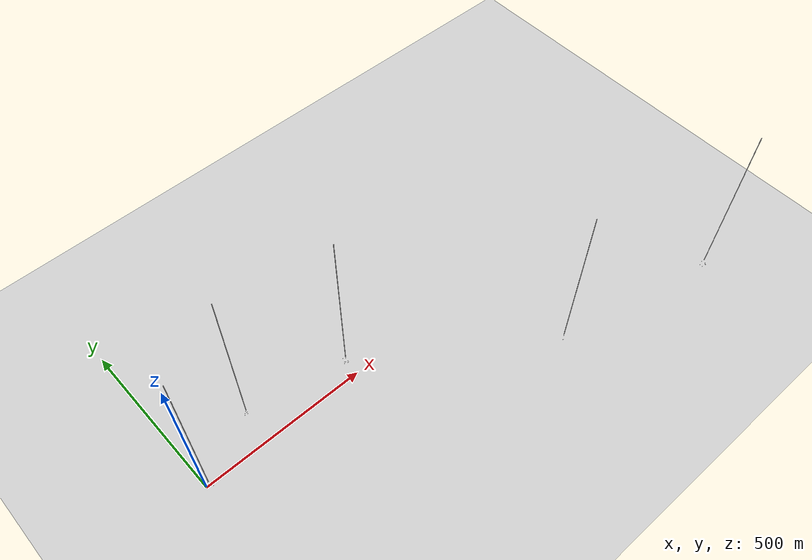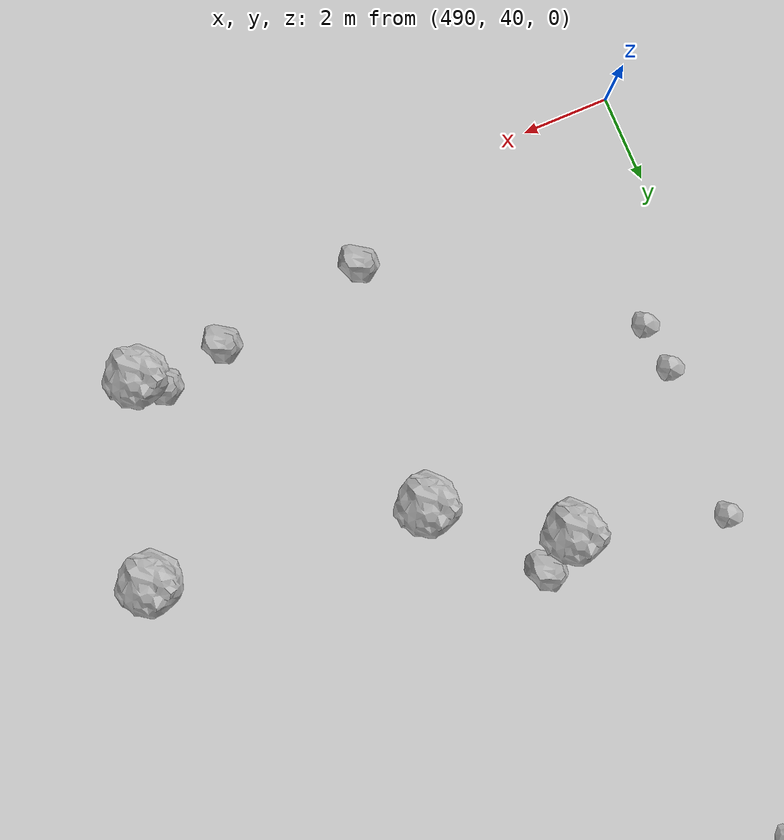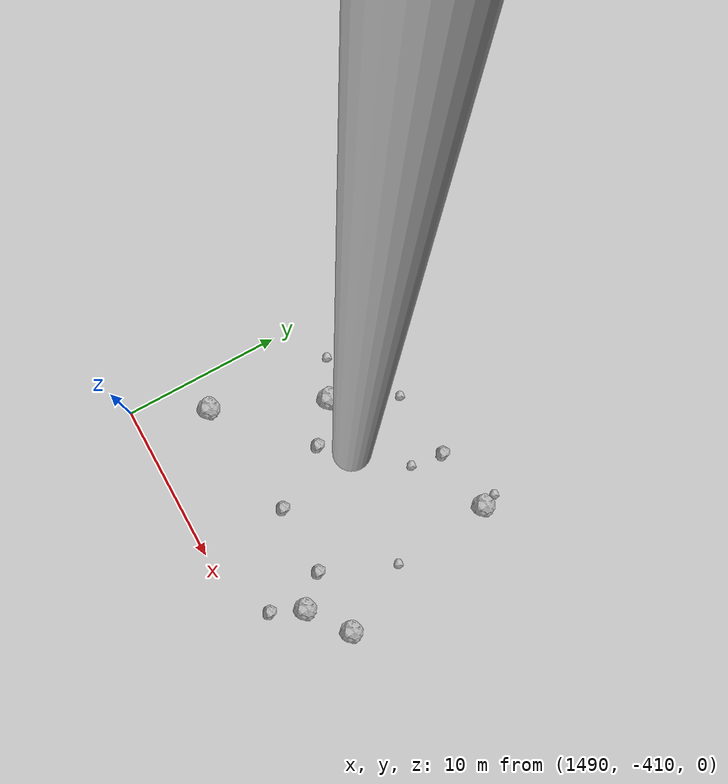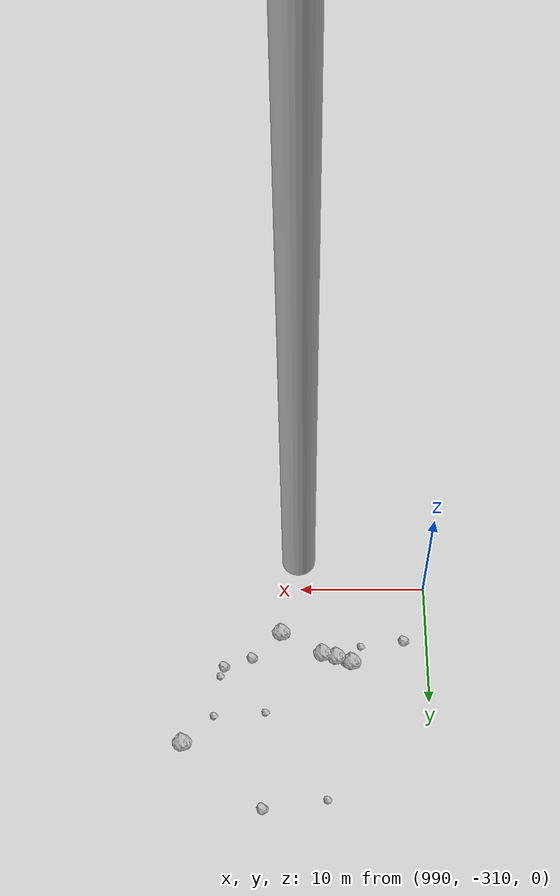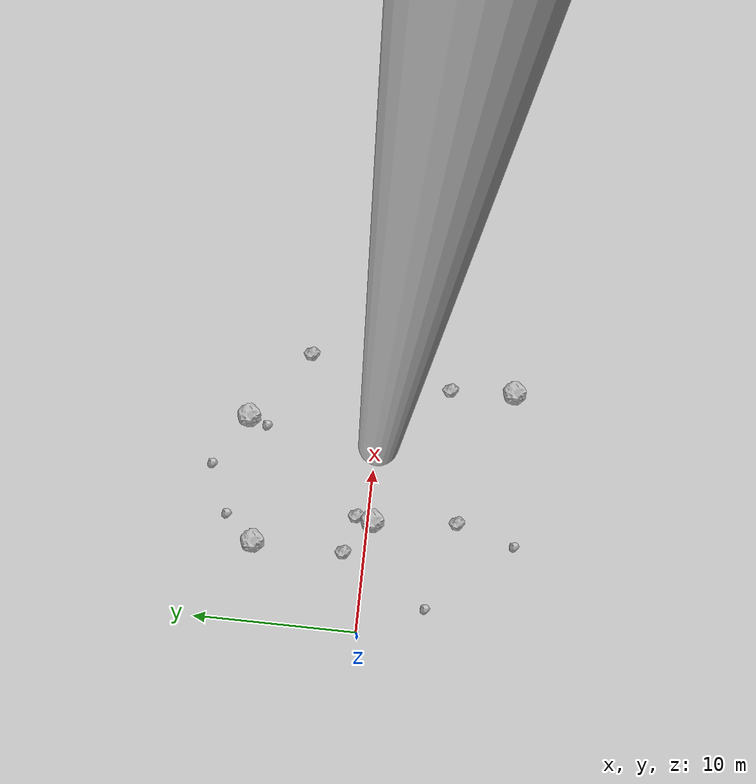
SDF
<?xml version="1.0" ?>
<sdf version="1.6">
  <world name="default">

    <include>
      <uri>model://custom_ground</uri>
    </include>

    <include>
      <uri>model://sun</uri>
    </include>

    <spherical_coordinates>
      <surface_model>EARTH_WGS84</surface_model>
      <latitude_deg>38.161479</latitude_deg>
      <longitude_deg>-122.454630</longitude_deg>
      <elevation>488.0</elevation>
      <heading_deg>90</heading_deg>
    </spherical_coordinates>

    <model name="rock1_0_0">
      <include>
        <uri>model://rock1</uri>
        <pose>18.424238970202666 -2.193589667638478 0.5 0 0 0</pose>
      </include>
    </model>
    <model name="rock1_0_1">
      <include>
        <uri>model://rock1</uri>
        <pose>4.974839960579147 6.896070360764334 0.5 0 0 0</pose>
      </include>
    </model>
    <model name="rock1_0_2">
      <include>
        <uri>model://rock1</uri>
        <pose>6.933372031182117 -0.2585628984870265 0.5 0 0 0</pose>
      </include>
    </model>
    <model name="rock1_0_3">
      <include>
        <uri>model://rock1</uri>
        <pose>12.590703531061413 7.916593475721047 0.5 0 0 0</pose>
      </include>
    </model>
    <model name="rock1_0_4">
      <include>
        <uri>model://rock1</uri>
        <pose>15.633813921390837 -8.133147448270599 0.5 0 0 0</pose>
      </include>
    </model>
    <model name="rock2_0_0">
      <include>
        <uri>model://rock2</uri>
        <pose>7.302043467193204 -5.417621919374724 0.3 0 0 0</pose>
      </include>
    </model>
    <model name="rock2_0_1">
      <include>
        <uri>model://rock2</uri>
        <pose>7.124871421450958 0.7713093218701932 0.3 0 0 0</pose>
      </include>
    </model>
    <model name="rock2_0_2">
      <include>
        <uri>model://rock2</uri>
        <pose>15.40382705011588 -4.218873540471639 0.3 0 0 0</pose>
      </include>
    </model>
    <model name="rock2_0_3">
      <include>
        <uri>model://rock2</uri>
        <pose>4.844790833376549 1.3354663416748345 0.3 0 0 0</pose>
      </include>
    </model>
    <model name="rock2_0_4">
      <include>
        <uri>model://rock2</uri>
        <pose>16.77923852822771 4.503906875412779 0.3 0 0 0</pose>
      </include>
    </model>
    <model name="rock3_0_0">
      <include>
        <uri>model://rock3</uri>
        <pose>9.411856310672013 9.859677483915064 0.2 0 0 0</pose>
      </include>
    </model>
    <model name="rock3_0_1">
      <include>
        <uri>model://rock3</uri>
        <pose>6.2040131958232525 -9.047718305613223 0.2 0 0 0</pose>
      </include>
    </model>
    <model name="rock3_0_2">
      <include>
        <uri>model://rock3</uri>
        <pose>1.8715971179045732 -4.009189626749466 0.2 0 0 0</pose>
      </include>
    </model>
    <model name="rock3_0_3">
      <include>
        <uri>model://rock3</uri>
        <pose>12.07818299167823 6.7613368735819 0.2 0 0 0</pose>
      </include>
    </model>
    <model name="rock3_0_4">
      <include>
        <uri>model://rock3</uri>
        <pose>6.4345517791237095 8.655709966366953 0.2 0 0 0</pose>
      </include>
    </model>
    <model name="rock1_1_0">
      <include>
        <uri>model://rock1</uri>
        <pose>200.864688490462 108.00550110081397 0.5 0 0 0</pose>
      </include>
    </model>
    <model name="rock1_1_1">
      <include>
        <uri>model://rock1</uri>
        <pose>201.1641912485593 103.52859906157909 0.5 0 0 0</pose>
      </include>
    </model>
    <model name="rock1_1_2">
      <include>
        <uri>model://rock1</uri>
        <pose>201.8054959783852 97.80053432442702 0.5 0 0 0</pose>
      </include>
    </model>
    <model name="rock1_1_3">
      <include>
        <uri>model://rock1</uri>
        <pose>195.46863158768582 103.78120256569021 0.5 0 0 0</pose>
      </include>
    </model>
    <model name="rock1_1_4">
      <include>
        <uri>model://rock1</uri>
        <pose>202.64801819124264 102.66184592289999 0.5 0 0 0</pose>
      </include>
    </model>
    <model name="rock2_1_0">
      <include>
        <uri>model://rock2</uri>
        <pose>209.6282283900366 98.2207661205808 0.3 0 0 0</pose>
      </include>
    </model>
    <model name="rock2_1_1">
      <include>
        <uri>model://rock2</uri>
        <pose>198.26111161039745 103.1917617541968 0.3 0 0 0</pose>
      </include>
    </model>
    <model name="rock2_1_2">
      <include>
        <uri>model://rock2</uri>
        <pose>201.9314020808825 97.5384221138861 0.3 0 0 0</pose>
      </include>
    </model>
    <model name="rock2_1_3">
      <include>
        <uri>model://rock2</uri>
        <pose>203.375203198593 102.977056682876 0.3 0 0 0</pose>
      </include>
    </model>
    <model name="rock2_1_4">
      <include>
        <uri>model://rock2</uri>
        <pose>206.68229324020302 105.83234525407852 0.3 0 0 0</pose>
      </include>
    </model>
    <model name="rock3_1_0">
      <include>
        <uri>model://rock3</uri>
        <pose>197.9491376156651 91.61797610693301 0.2 0 0 0</pose>
      </include>
    </model>
    <model name="rock3_1_1">
      <include>
        <uri>model://rock3</uri>
        <pose>199.36603159900744 91.61280776458166 0.2 0 0 0</pose>
      </include>
    </model>
    <model name="rock3_1_2">
      <include>
        <uri>model://rock3</uri>
        <pose>202.2298653880464 96.37177048187752 0.2 0 0 0</pose>
      </include>
    </model>
    <model name="rock3_1_3">
      <include>
        <uri>model://rock3</uri>
        <pose>192.86868583881179 99.50582944390605 0.2 0 0 0</pose>
      </include>
    </model>
    <model name="rock3_1_4">
      <include>
        <uri>model://rock3</uri>
        <pose>193.96928561184265 96.68729268578973 0.2 0 0 0</pose>
      </include>
    </model>
    <model name="rock1_2_0">
      <include>
        <uri>model://rock1</uri>
        <pose>502.1855505394183 41.86998050979271 0.5 0 0 0</pose>
      </include>
    </model>
    <model name="rock1_2_1">
      <include>
        <uri>model://rock1</uri>
        <pose>498.2115071375627 59.728244396792704 0.5 0 0 0</pose>
      </include>
    </model>
    <model name="rock1_2_2">
      <include>
        <uri>model://rock1</uri>
        <pose>497.4031261858876 46.914371738181025 0.5 0 0 0</pose>
      </include>
    </model>
    <model name="rock1_2_3">
      <include>
        <uri>model://rock1</uri>
        <pose>503.59170952139823 46.16081747591946 0.5 0 0 0</pose>
      </include>
    </model>
    <model name="rock1_2_4">
      <include>
        <uri>model://rock1</uri>
        <pose>494.72051496940173 48.69080302439917 0.5 0 0 0</pose>
      </include>
    </model>
    <model name="rock2_2_0">
      <include>
        <uri>model://rock2</uri>
        <pose>501.7205821632022 42.22925102240856 0.3 0 0 0</pose>
      </include>
    </model>
    <model name="rock2_2_1">
      <include>
        <uri>model://rock2</uri>
        <pose>503.12521769882864 55.90115682811662 0.3 0 0 0</pose>
      </include>
    </model>
    <model name="rock2_2_2">
      <include>
        <uri>model://rock2</uri>
        <pose>496.6879493029015 41.377733536611714 0.3 0 0 0</pose>
      </include>
    </model>
    <model name="rock2_2_3">
      <include>
        <uri>model://rock2</uri>
        <pose>495.5379210433286 49.23640757631124 0.3 0 0 0</pose>
      </include>
    </model>
    <model name="rock2_2_4">
      <include>
        <uri>model://rock2</uri>
        <pose>500.1786753713092 41.877309425847095 0.3 0 0 0</pose>
      </include>
    </model>
    <model name="rock3_2_0">
      <include>
        <uri>model://rock3</uri>
        <pose>493.0262053234171 56.46387053823287 0.2 0 0 0</pose>
      </include>
    </model>
    <model name="rock3_2_1">
      <include>
        <uri>model://rock3</uri>
        <pose>491.3147194689008 45.08468820204884 0.2 0 0 0</pose>
      </include>
    </model>
    <model name="rock3_2_2">
      <include>
        <uri>model://rock3</uri>
        <pose>504.7007121884954 57.01685674526958 0.2 0 0 0</pose>
      </include>
    </model>
    <model name="rock3_2_3">
      <include>
        <uri>model://rock3</uri>
        <pose>491.3562987697353 49.65203905218411 0.2 0 0 0</pose>
      </include>
    </model>
    <model name="rock3_2_4">
      <include>
        <uri>model://rock3</uri>
        <pose>491.1989493963652 46.18239314049157 0.2 0 0 0</pose>
      </include>
    </model>
    <model name="rock1_3_0">
      <include>
        <uri>model://rock1</uri>
        <pose>995.9362739907343 -303.1749621446856 0.5 0 0 0</pose>
      </include>
    </model>
    <model name="rock1_3_1">
      <include>
        <uri>model://rock1</uri>
        <pose>998.2289917167545 -303.9053473206934 0.5 0 0 0</pose>
      </include>
    </model>
    <model name="rock1_3_2">
      <include>
        <uri>model://rock1</uri>
        <pose>997.1418256825336 -303.6218286688531 0.5 0 0 0</pose>
      </include>
    </model>
    <model name="rock1_3_3">
      <include>
        <uri>model://rock1</uri>
        <pose>1001.5020139379989 -305.717835053385 0.5 0 0 0</pose>
      </include>
    </model>
    <model name="rock1_3_4">
      <include>
        <uri>model://rock1</uri>
        <pose>1008.7682386108888 -296.29880564424485 0.5 0 0 0</pose>
      </include>
    </model>
    <model name="rock2_3_0">
      <include>
        <uri>model://rock2</uri>
        <pose>996.4170787034187 -303.2926577979766 0.3 0 0 0</pose>
      </include>
    </model>
    <model name="rock2_3_1">
      <include>
        <uri>model://rock2</uri>
        <pose>991.8083945228593 -305.14524216128194 0.3 0 0 0</pose>
      </include>
    </model>
    <model name="rock2_3_2">
      <include>
        <uri>model://rock2</uri>
        <pose>1005.89994420245 -302.7577182899888 0.3 0 0 0</pose>
      </include>
    </model>
    <model name="rock2_3_3">
      <include>
        <uri>model://rock2</uri>
        <pose>1003.7487754344852 -303.5448112969902 0.3 0 0 0</pose>
      </include>
    </model>
    <model name="rock2_3_4">
      <include>
        <uri>model://rock2</uri>
        <pose>1002.6239852366042 -291.3073280334529 0.3 0 0 0</pose>
      </include>
    </model>
    <model name="rock3_3_0">
      <include>
        <uri>model://rock3</uri>
        <pose>1006.1465942123325 -302.0123429505048 0.2 0 0 0</pose>
      </include>
    </model>
    <model name="rock3_3_1">
      <include>
        <uri>model://rock3</uri>
        <pose>1006.4896786001378 -298.6527398017782 0.2 0 0 0</pose>
      </include>
    </model>
    <model name="rock3_3_2">
      <include>
        <uri>model://rock3</uri>
        <pose>1002.5627160771156 -298.9685439943991 0.2 0 0 0</pose>
      </include>
    </model>
    <model name="rock3_3_3">
      <include>
        <uri>model://rock3</uri>
        <pose>995.1745152846299 -304.6996583604956 0.2 0 0 0</pose>
      </include>
    </model>
    <model name="rock3_3_4">
      <include>
        <uri>model://rock3</uri>
        <pose>997.8406381673726 -292.06937307266486 0.2 0 0 0</pose>
      </include>
    </model>
    <model name="rock1_4_0">
      <include>
        <uri>model://rock1</uri>
        <pose>1492.0917070659884 -405.5760905895519 0.5 0 0 0</pose>
      </include>
    </model>
    <model name="rock1_4_1">
      <include>
        <uri>model://rock1</uri>
        <pose>1495.0615581989437 -398.7144347574633 0.5 0 0 0</pose>
      </include>
    </model>
    <model name="rock1_4_2">
      <include>
        <uri>model://rock1</uri>
        <pose>1505.457098801196 -393.3846255644058 0.5 0 0 0</pose>
      </include>
    </model>
    <model name="rock1_4_3">
      <include>
        <uri>model://rock1</uri>
        <pose>1508.4527160716857 -404.24770781556117 0.5 0 0 0</pose>
      </include>
    </model>
    <model name="rock1_4_4">
      <include>
        <uri>model://rock1</uri>
        <pose>1505.8942444775598 -406.1127091042271 0.5 0 0 0</pose>
      </include>
    </model>
    <model name="rock2_4_0">
      <include>
        <uri>model://rock2</uri>
        <pose>1499.7083934068144 -404.40800236713824 0.3 0 0 0</pose>
      </include>
    </model>
    <model name="rock2_4_1">
      <include>
        <uri>model://rock2</uri>
        <pose>1504.9968242150435 -408.1370291124595 0.3 0 0 0</pose>
      </include>
    </model>
    <model name="rock2_4_2">
      <include>
        <uri>model://rock2</uri>
        <pose>1497.2764387694947 -400.66643646953094 0.3 0 0 0</pose>
      </include>
    </model>
    <model name="rock2_4_3">
      <include>
        <uri>model://rock2</uri>
        <pose>1504.202888713662 -404.3166150597313 0.3 0 0 0</pose>
      </include>
    </model>
    <model name="rock2_4_4">
      <include>
        <uri>model://rock2</uri>
        <pose>1501.3631883627736 -394.034448397703 0.3 0 0 0</pose>
      </include>
    </model>
    <model name="rock3_4_0">
      <include>
        <uri>model://rock3</uri>
        <pose>1501.1166377709642 -396.137845827323 0.2 0 0 0</pose>
      </include>
    </model>
    <model name="rock3_4_1">
      <include>
        <uri>model://rock3</uri>
        <pose>1506.108556870649 -399.73323085719665 0.2 0 0 0</pose>
      </include>
    </model>
    <model name="rock3_4_2">
      <include>
        <uri>model://rock3</uri>
        <pose>1505.1155648299714 -392.45047214618234 0.2 0 0 0</pose>
      </include>
    </model>
    <model name="rock3_4_3">
      <include>
        <uri>model://rock3</uri>
        <pose>1496.9407709315153 -394.6927622885312 0.2 0 0 0</pose>
      </include>
    </model>
    <model name="rock3_4_4">
      <include>
        <uri>model://rock3</uri>
        <pose>1492.656469209291 -397.5784298077357 0.2 0 0 0</pose>
      </include>
    </model>

    <model name="cylinder_1">
      <static>true</static>
      <link name="link">
        <visual name="visual">
          <geometry>
            <cylinder>
              <radius>1</radius>
              <length>500</length>
            </cylinder>
          </geometry>
        </visual>
      </link>
      <pose>10 0 270 0 0 0</pose>
    </model>

    <model name="cylinder_2">
      <static>true</static>
      <link name="link">
        <visual name="visual">
          <geometry>
            <cylinder>
              <radius>1</radius>
              <length>500</length>
            </cylinder>
          </geometry>
        </visual>
      </link>
      <pose>200 100 270 0 0 0</pose>
    </model>

    <model name="cylinder_3">
      <static>true</static>
      <link name="link">
        <visual name="visual">
          <geometry>
            <cylinder>
              <radius>1</radius>
              <length>500</length>
            </cylinder>
          </geometry>
        </visual>
      </link>
      <pose>500 50 270 0 0 0</pose>
    </model>

    <model name="cylinder_4">
      <static>true</static>
      <link name="link">
        <visual name="visual">
          <geometry>
            <cylinder>
              <radius>1</radius>
              <length>500</length>
            </cylinder>
          </geometry>
        </visual>
      </link>
      <pose>1000 -300 270 0 0 0</pose>
    </model>

    <model name="cylinder_5">
      <static>true</static>
      <link name="link">
        <visual name="visual">
          <geometry>
            <cylinder>
              <radius>1</radius>
              <length>500</length>
            </cylinder>
          </geometry>
        </visual>
      </link>
      <pose>1500 -400 270 0 0 0</pose>
    </model>

  </world>
</sdf>

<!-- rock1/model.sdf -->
<sdf version="1.6">
  <model name="rock1">
    <static>true</static> <!-- Set to true if the model should not move -->
    <pose>0 0 0 0 0 0</pose>

    <!--z offset is 0.5 for full scale-->

    <link name="link">
      <collision name="rock1_collision">
        <geometry>
          <mesh>
            <uri>model://meshes/rock1.dae</uri>
          </mesh>
        </geometry>
      </collision>
      <visual name="rock1_visual">
        <geometry>
          <mesh>
            <uri>model://meshes/rock1.dae</uri>
          </mesh>
        </geometry>
        <material>
          <script>
            <uri>model://materials/scripts/sand_pebbles.material</uri>
            <name>custom_ground/Image</name>
          </script>
        </material>
      </visual>
    </link>
  </model>
</sdf>

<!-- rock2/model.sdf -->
<sdf version="1.6">
  <model name="rock2">
    <static>true</static> <!-- Set to true if the model should not move -->
    <pose>0 0 0 0 0 0</pose>

    <!--z offset is 0.3 for full scale-->

    <link name="link">
      <collision name="rock2_collision">
        <geometry>
          <mesh>
            <uri>model://meshes/rock2.dae</uri>
          </mesh>
        </geometry>
      </collision>
      <visual name="rock2_visual">
        <geometry>
          <mesh>
            <uri>model://meshes/rock2.dae</uri>
          </mesh>
        </geometry>
        <material>
          <script>
            <uri>model://materials/scripts/sand_pebbles.material</uri>
            <name>custom_ground/Image</name>
          </script>
        </material>
      </visual>
    </link>
  </model>
</sdf>

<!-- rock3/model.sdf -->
<sdf version="1.6">
  <model name="rock3">
    <static>true</static> <!-- Set to true if the model should not move -->
    <pose>0 0 0 0 0 0</pose>

    <!--z offset is 0.2 for full scale-->

    <link name="link">
      <collision name="rock3_collision">
        <geometry>
          <mesh>
            <uri>model://meshes/rock3.dae</uri>
          </mesh>
        </geometry>
      </collision>
      <visual name="rock3_visual">
        <geometry>
          <mesh>
            <uri>model://meshes/rock3.dae</uri>
          </mesh>
        </geometry>
        <material>
          <script>
            <uri>model://materials/scripts/sand_pebbles.material</uri>
            <name>custom_ground/Image</name>
          </script>
        </material>
      </visual>
    </link>
  </model>
</sdf>

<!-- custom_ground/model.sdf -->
<sdf version="1.6">
  <model name="custom_ground">
    <static>true</static> <!-- Ground is static and immovable -->
    <link name="ground_link">
      <pose>240 0 0 0 0 0</pose> <!-- Position and orientation relative to the world -->
      <!-- Visual Representation -->
      <visual name="ground_visual">
        <geometry>
          <plane>
            <normal>0 0 1</normal> <!-- Upward facing plane -->
            <size>500 500</size> <!-- Size of the plane -->
          </plane>
        </geometry>
        <material>
          <script>
            <uri>model://materials/scripts/sand_pebbles.material</uri>
            <name>custom_ground/Image</name>
          </script>
        </material>
      </visual>

      <!-- Collision Representation -->
      <collision name="ground_collision">
        <geometry>
          <plane>
            <normal>0 0 1</normal>
            <size>100 100</size>
          </plane>
        </geometry>
      </collision>

    </link>
  </model>
</sdf>
